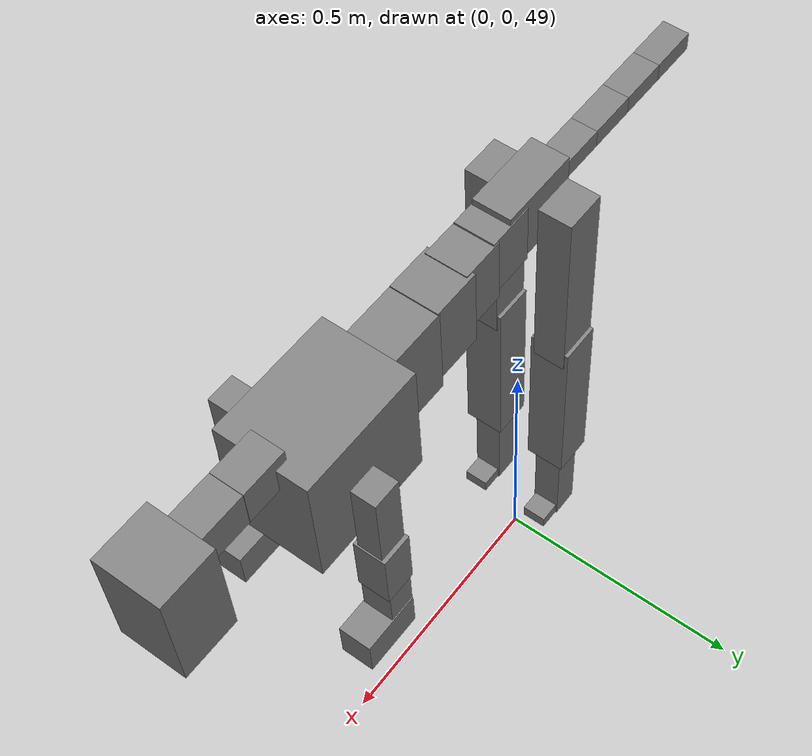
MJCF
<mujoco model="dog">

    <default>
        <joint armature="0.02" stiffness="1" damping="0.2" limited="true"/>
        <geom condim="3" friction="1 0.05 0.05" margin="0.01"/>
        <motor ctrllimited="true" ctrlrange="-1.0 1.0" forcelimited="true" gear="50"/>
    </default>

    <compiler inertiafromgeom="true" angle="radian"/>

    <option timestep="0.016" iterations="50" tolerance="1e-10" solver="Newton" jacobian="dense" cone="pyramidal"/>

    <size nconmax="20000" njmax="60000" nstack="5000000"/>
    <visual>
        <map force="0.1" zfar="30"/>
        <rgba haze="0.15 0.25 0.35 1"/>
        <quality shadowsize="2048"/>
        <global offwidth="800" offheight="800"/>
    </visual>

    <asset>
        <texture type="skybox" builtin="gradient" rgb1="0.3 0.5 0.7" rgb2="0 0 0" width="512" height="512"/>
        <texture name="texplane" type="2d" builtin="checker" rgb1=".2 .3 .4" rgb2=".1 0.15 0.2" width="512" height="512"
                 mark="cross" markrgb=".8 .8 .8"/>
        <texture name="texgeom" type="cube" builtin="flat" mark="cross" width="127" height="1278" rgb1="0.8 0.6 0.4"
                 rgb2="0.8 0.6 0.4" markrgb="1 1 1" random="0.01"/>

        <material name="matplane" reflectance="0.3" texture="texplane" texrepeat="1 1" texuniform="true"/>
        <material name="matgeom" texture="texgeom" texuniform="true" rgba="0.8 0.6 .4 1"/>
    </asset>

    <worldbody>
        <geom name="floor" pos="0 0 0" size="0 0 .25" type="plane" material="matplane" condim="3"/>

        <light directional="false" diffuse=".2 .2 .2" specular="0 0 0" pos="0 0 5" dir="0 0 -1" castshadow="false"/>
        <light mode="targetbodycom" target="torso" directional="false" diffuse=".8 .8 .8" specular="0.3 0.3 0.3"
               pos="0 0 4.0" dir="0 0 -1"/>

        <body name="root" pos="0 0 50">
            <freejoint name="root_1"/>
            <geom type="box" pos="0 0 -0.02" size="0.0774  0.0358  0.063" density="2030"/>

            <body name="spine1" pos="0.054 0 0">
                <joint name="spine1_y" axis="0 1 0" range="0 0.7" limited="true"/>
                <geom type="box" pos="0.02375 0 -0.03" size="0.04375  0.0375  0.05985" density="2030"/>

                <body name="spine2" pos="0.0612 0 0">
                    <joint name="spine2_y" axis="0 1 0" range="-0.15 0.15" limited="true"/>
                    <geom type="box" pos="0.03555  0  -0.04" size="0.04055  0.039  0.06615" density="2030"/>

                    <body name="spine3" pos="0.0730 0 0">
                        <joint name="spine3_y" axis="0 1 0" range="-0.15 0.15" limited="true"/>
                        <geom type="box" pos="0.03555  0  -0.057" size="0.04555  0.0445  0.081" density="2030"/>

                        <body name="spine4" pos="0.0780 0 0">
                            <joint name="spine4_y" axis="0 1 0" range="-0.15 0.15" limited="true"/>
                            <geom type="box" pos="0.05265  0  -0.07" size="0.05265  0.045  0.09135" density="2030"/>

                            <body name="torso" pos="0.1082 0 0">
                                <joint name="torso_y" axis="0 1 0" range="-0.15 0.15" limited="true"/>
                                <geom type="box" pos="0.11925  0  -0.085" size="0.11925  0.085  0.11745"
                                      density="2030"/>

                                <body name="neck1" pos="0.2160  0   0.0180">
                                    <joint name="neck1_y" axis="0 1 0" range="-1.2  -1" limited="true"/>
                                    <geom type="box" pos="0.0423  0  0" size="0.0423  0.03  0.036" density="2325"/>

                                    <body name="neck2" pos="0.0853  0  0">
                                        <joint name="neck2_y" axis="0 1 0" range="0.1  0" limited="true"/>
                                        <geom type="box" pos="0.0423  0  0" size="0.0423  0.03  0.036" density="2325"/>

                                        <body name="head" pos="0.0853  0  0">
                                            <joint name="head_y" axis="0 1 0" range="-0.3  -0.2" limited="true"/>
                                            <geom type="box" pos="0.0531  0  -0.055" size="0.0531  0.06  0.1044"
                                                  density="4030"/>

                                        </body>
                                    </body>
                                </body>

                                <body name="front_shoulder" pos="0.156  0   -0.0480">
                                    <joint name="front_shoulder_y" axis="0 1 0" range="-1 1.5" limited="true"/>
                                    <geom type="box" pos="0 0.13 -0.0627" size="0.0261  0.0223  0.0894" density="1158"/>
                                    <geom type="box" pos="0 -0.13 -0.0627" size="0.0261  0.0223  0.0894"
                                          density="1158"/>

                                    <body name="front_elbow" pos="0  0  -0.1255">
                                        <joint name="front_elbow_y" axis="0 1 0" range="-2 0" limited="true"/>
                                        <geom type="box" pos="0 0.13 -0.0593" size="0.0288  0.0295  0.0593"
                                              density="1081"/>
                                        <geom type="box" pos="0 -0.13 -0.0593" size="0.0288  0.0295  0.0593"
                                              density="1081"/>

                                        <body name="front_wrist" pos="0  0  -0.1187">
                                            <joint name="front_wrist_y" axis="0 1 0" range="-0.2 0" limited="true"/>
                                            <geom type="box" pos="0 0.13 -0.0423" size="0.0250  0.0278  0.0555"
                                                  density="1664"/>
                                            <geom type="box" pos="0 -0.13 -0.0423" size="0.0250  0.0278  0.0555"
                                                  density="1664"/>

                                            <body name="front_finger_end" pos="0  0  -0.0847">
                                                <joint name="front_finger_y" axis="0 1 0" range="-0.4 1"
                                                       limited="true"/>
                                                <geom type="box" pos="0.0297  0.13  -0.0216"
                                                      size="0.0545  0.0297  0.0366" density="1515"/>
                                                <geom type="box" pos="0.0297  -0.13  -0.0216"
                                                      size="0.0545  0.0297  0.0366" density="1515"/>

                                            </body>

                                        </body>
                                    </body>
                                </body>

                            </body>
                        </body>
                    </body>
                </body>
            </body>

            <body name="back_hip" pos="-0.03 0 -0.018">
                <joint name="back_hip_y" axis="0 1 0" range="-1.5 0.3" limited="true"/>
                <geom type="box" pos="0 0.07 -0.1644" size="0.0396  0.0310  0.1872" density="1154"/>
                <geom type="box" pos="0 -0.07 -0.1644" size="0.0396  0.0310  0.1872" density="1154"/>

                <body name="back_knee" pos="0  0  -0.3287">
                    <joint name="back_knee_y" axis="0 1 0" range="0 2.8" limited="true"/>
                    <geom type="box" pos="0 0.07 -0.1647" size="0.0384  0.0378  0.1802" density="1227"/>
                    <geom type="box" pos="0 -0.07 -0.1647" size="0.0384  0.0378  0.1802" density="1227"/>

                    <body name="back_ankle" pos="0  0  -0.3293">
                        <joint name="back_ankle_y" axis="0 1 0" range="-2.2 0" limited="true"/>
                        <geom type="box" pos="0 0.07 -0.0961" size="0.0266  0.0266  0.1074" density="1284"/>
                        <geom type="box" pos="0 -0.07 -0.0961" size="0.0266  0.0266  0.1074" density="1284"/>

                        <body name="back_toe_end" pos="0  0  -0.1923">
                            <joint name="back_toe_y" axis="0 1 0" range="-0.4 1" limited="true"/>
                            <geom type="box" pos="0.0238  0.07  0.0018" size="0.0436  0.0238  0.0132" density="1515"/>
                            <geom type="box" pos="0.0238  -0.07  0.0018" size="0.0436  0.0238  0.0132" density="1515"/>

                        </body>
                    </body>
                </body>
            </body>

            <body name="tail1" pos="-0.074 0 -0.006">
                <joint name="tail1_y" axis="0 1 0" range="-0.2 0.2" limited="true"/>
                <geom type="box" pos="-0.0536  0  0" size="0.045  0.025  0.0175" density="1587"/>

                <body name="tail2" pos="-0.09 0 0">
                    <joint name="tail2_y" axis="0 1 0" range="-0.2 0.2" limited="true"/>
                    <geom type="box" pos="-0.0536  0  0" size="0.045  0.025  0.0175" density="1587"/>

                    <body name="tail3" pos="-0.09 0 0">
                        <joint name="tail3_y" axis="0 1 0" range="-0.2 0.2" limited="true"/>
                        <geom type="box" pos="-0.0536  0  0" size="0.045  0.025  0.0175" density="1587"/>

                        <body name="tail4" pos="-0.09 0 0">
                            <joint name="tail4_y" axis="0 1 0" range="-0.2 0.2" limited="true"/>
                            <geom type="box" pos="-0.0536  0  0" size="0.045  0.025  0.0175" density="1587"/>

                        </body>
                    </body>
                </body>
            </body>
        </body>
    </worldbody>

    <actuator>
        <motor joint="spine1_y" forcerange="-150 150     "/>
        <motor joint="spine2_y" forcerange="-150 150     "/>
        <motor joint="spine3_y" forcerange="-150 150     "/>
        <motor joint="spine4_y" forcerange="-150 150     "/>
        <motor joint="torso_y" forcerange="-150 150     "/>
        <motor joint="neck1_y" forcerange="-100 100       "/>
        <motor joint="neck2_y" forcerange="-100 100       "/>
        <motor joint="head_y" forcerange="-150 150       "/>
        <motor joint="front_shoulder_y" forcerange="-137.16 111.50"/>
        <motor joint="front_elbow_y" forcerange="-139.68 174.67"/>
        <motor joint="front_wrist_y" forcerange="-142.14 80.38"/>
        <motor joint="front_finger_y" forcerange="-30.17 88.45"/>
        <motor joint="back_hip_y" forcerange="-284.73 328.97"/>
        <motor joint="back_knee_y" forcerange="-378.32 372.08"/>
        <motor joint="back_angle_y" forcerange="-220.48 105.60"/>
        <motor joint="back_toe_y" forcerange="-21.60 88.47"/>
        <motor joint="tail1_y" forcerange="-50 50     "/>
        <motor joint="tail2_y" forcerange="-50 50     "/>
        <motor joint="tail3_y" forcerange="-50 50     "/>
        <motor joint="tail4_y" forcerange="-50 50     "/>
    </actuator>
</mujoco>
